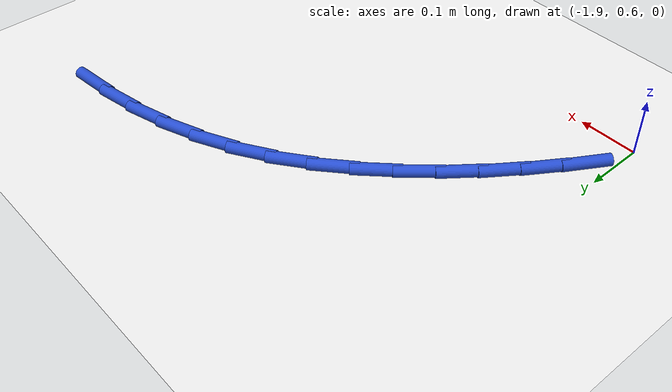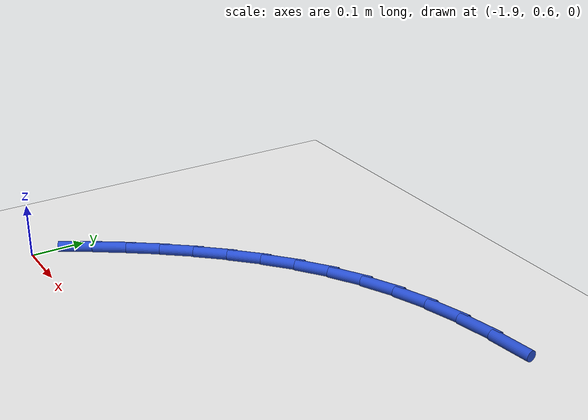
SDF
<sdf version="1.6">
 <world name="default">
  <model name="ground_plane">
   <static>1</static>
   <link name="link">
    <collision name="collision">
     <geometry><plane><normal>0 0 1</normal><size>100 100</size></plane></geometry>
     <surface><friction><ode><mu>100</mu><mu2>50</mu2></ode></friction></surface>
    </collision>
    <visual name="visual">
     <cast_shadows>0</cast_shadows>
     <geometry><plane><normal>0 0 1</normal><size>100 100</size></plane></geometry>
     <material>
      <script><uri>file://media/materials/scripts/gazebo.material</uri><name>Gazebo/WhiteGlow</name></script>
     </material>
    </visual>
   </link>
  </model>
  <model name="line">
   <link name="link_28">
    <pose>-1.2065451063236594 1.1356487531276969 0.01 0 1.57 0.11821942127467293</pose>
    <collision name="collision">
     <geometry><cylinder><radius>0.01</radius><length>0.08</length></cylinder></geometry>
    </collision>
    <visual name="visual">
     <material>
      <script><name>Gazebo/Blue</name><uri>file://media/materials/scripts/gazebo.material</uri></script>
     </material>
     <geometry><cylinder><radius>0.01</radius><length>0.08</length></cylinder></geometry>
    </visual>
   </link>
   <link name="link_29">
    <pose>-1.272358933907314 1.1278318305462827 0.01 0 1.57 0.19480648823703625</pose>
    <collision name="collision">
     <geometry><cylinder><radius>0.01</radius><length>0.08</length></cylinder></geometry>
    </collision>
    <visual name="visual">
     <material>
      <script><name>Gazebo/Blue</name><uri>file://media/materials/scripts/gazebo.material</uri></script>
     </material>
     <geometry><cylinder><radius>0.01</radius><length>0.08</length></cylinder></geometry>
    </visual>
   </link>
   <link name="link_30">
    <pose>-1.3368670102554465 1.1151038224387375 0.01 0 1.57 0.27609859397885833</pose>
    <collision name="collision">
     <geometry><cylinder><radius>0.01</radius><length>0.08</length></cylinder></geometry>
    </collision>
    <visual name="visual">
     <material>
      <script><name>Gazebo/Blue</name><uri>file://media/materials/scripts/gazebo.material</uri></script>
     </material>
     <geometry><cylinder><radius>0.01</radius><length>0.08</length></cylinder></geometry>
    </visual>
   </link>
   <link name="link_31">
    <pose>-1.3996271413852572 1.0973216785310462 0.01 0 1.57 0.362609263941544</pose>
    <collision name="collision">
     <geometry><cylinder><radius>0.01</radius><length>0.08</length></cylinder></geometry>
    </collision>
    <visual name="visual">
     <material>
      <script><name>Gazebo/Blue</name><uri>file://media/materials/scripts/gazebo.material</uri></script>
     </material>
     <geometry><cylinder><radius>0.01</radius><length>0.08</length></cylinder></geometry>
    </visual>
   </link>
   <link name="link_32">
    <pose>-1.4601971333139456 1.074342348549194 0.01 0 1.57 0.4546424976536854</pose>
    <collision name="collision">
     <geometry><cylinder><radius>0.01</radius><length>0.08</length></cylinder></geometry>
    </collision>
    <visual name="visual">
     <material>
      <script><name>Gazebo/Blue</name><uri>file://media/materials/scripts/gazebo.material</uri></script>
     </material>
     <geometry><cylinder><radius>0.01</radius><length>0.08</length></cylinder></geometry>
    </visual>
   </link>
   <link name="link_33">
    <pose>-1.5181347920587114 1.0460227822191657 0.01 0 1.57 0.5516264232194935</pose>
    <collision name="collision">
     <geometry><cylinder><radius>0.01</radius><length>0.08</length></cylinder></geometry>
    </collision>
    <visual name="visual">
     <material>
      <script><name>Gazebo/Blue</name><uri>file://media/materials/scripts/gazebo.material</uri></script>
     </material>
     <geometry><cylinder><radius>0.01</radius><length>0.08</length></cylinder></geometry>
    </visual>
   </link>
   <link name="link_34">
    <pose>-1.5730108716119888 1.0122550477989347 0.01 0 1.57 0.6435951261306116</pose>
    <collision name="collision">
     <geometry><cylinder><radius>0.01</radius><length>0.08</length></cylinder></geometry>
    </collision>
    <visual name="visual">
     <material>
      <script><name>Gazebo/Blue</name><uri>file://media/materials/scripts/gazebo.material</uri></script>
     </material>
     <geometry><cylinder><radius>0.01</radius><length>0.08</length></cylinder></geometry>
    </visual>
   </link>
   <link name="link_35">
    <pose>-1.6246206345009555 0.9735401435155387 0.01 0 1.57 0.7230092944647956</pose>
    <collision name="collision">
     <geometry><cylinder><radius>0.01</radius><length>0.08</length></cylinder></geometry>
    </collision>
    <visual name="visual">
     <material>
      <script><name>Gazebo/Blue</name><uri>file://media/materials/scripts/gazebo.material</uri></script>
     </material>
     <geometry><cylinder><radius>0.01</radius><length>0.08</length></cylinder></geometry>
    </visual>
   </link>
   <link name="link_36">
    <pose>-1.6729493963296005 0.9308945447217105 0.01 0 1.57 0.7910053199963687</pose>
    <collision name="collision">
     <geometry><cylinder><radius>0.01</radius><length>0.08</length></cylinder></geometry>
    </collision>
    <visual name="visual">
     <material>
      <script><name>Gazebo/Blue</name><uri>file://media/materials/scripts/gazebo.material</uri></script>
     </material>
     <geometry><cylinder><radius>0.01</radius><length>0.08</length></cylinder></geometry>
    </visual>
   </link>
   <link name="link_37">
    <pose>-1.7179911881380139 0.8853447865826698 0.01 0 1.57 0.8507059592576129</pose>
    <collision name="collision">
     <geometry><cylinder><radius>0.01</radius><length>0.08</length></cylinder></geometry>
    </collision>
    <visual name="visual">
     <material>
      <script><name>Gazebo/Blue</name><uri>file://media/materials/scripts/gazebo.material</uri></script>
     </material>
     <geometry><cylinder><radius>0.01</radius><length>0.08</length></cylinder></geometry>
    </visual>
   </link>
   <link name="link_38">
    <pose>-1.7598839387786303 0.8375889461127124 0.01 0 1.57 0.9047573864697855</pose>
    <collision name="collision">
     <geometry><cylinder><radius>0.01</radius><length>0.08</length></cylinder></geometry>
    </collision>
    <visual name="visual">
     <material>
      <script><name>Gazebo/Blue</name><uri>file://media/materials/scripts/gazebo.material</uri></script>
     </material>
     <geometry><cylinder><radius>0.01</radius><length>0.08</length></cylinder></geometry>
    </visual>
   </link>
   <link name="link_39">
    <pose>-1.7989782195072472 0.7878397272028109 0.01 0 1.57 0.952752195523261</pose>
    <collision name="collision">
     <geometry><cylinder><radius>0.01</radius><length>0.08</length></cylinder></geometry>
    </collision>
    <visual name="visual">
     <material>
      <script><name>Gazebo/Blue</name><uri>file://media/materials/scripts/gazebo.material</uri></script>
     </material>
     <geometry><cylinder><radius>0.01</radius><length>0.08</length></cylinder></geometry>
    </visual>
   </link>
   <link name="link_40">
    <pose>-1.8356417297394918 0.7362707373628671 0.01 0 1.57 0.9942812281109653</pose>
    <collision name="collision">
     <geometry><cylinder><radius>0.01</radius><length>0.08</length></cylinder></geometry>
    </collision>
    <visual name="visual">
     <material>
      <script><name>Gazebo/Blue</name><uri>file://media/materials/scripts/gazebo.material</uri></script>
     </material>
     <geometry><cylinder><radius>0.01</radius><length>0.08</length></cylinder></geometry>
    </visual>
   </link>
   <link name="link_41">
    <pose>-1.870242168890992 0.683055584102784 0.01 0 1.57 1.0291348406907823</pose>
    <collision name="collision">
     <geometry><cylinder><radius>0.01</radius><length>0.08</length></cylinder></geometry>
    </collision>
    <visual name="visual">
     <material>
      <script><name>Gazebo/Blue</name><uri>file://media/materials/scripts/gazebo.material</uri></script>
     </material>
     <geometry><cylinder><radius>0.01</radius><length>0.08</length></cylinder></geometry>
    </visual>
   </link>
  </model>
 </world>
</sdf>
